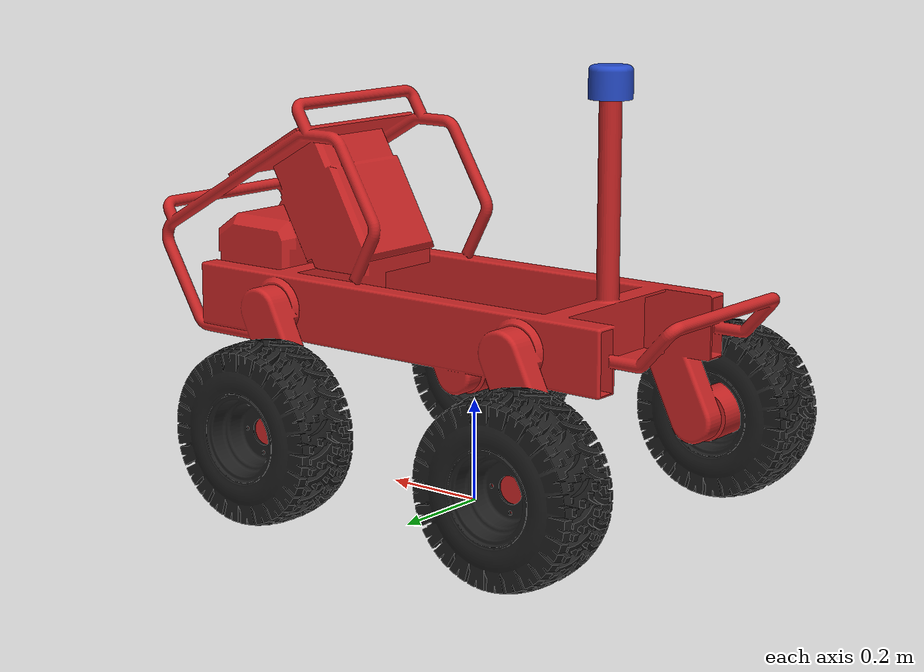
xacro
<?xml version="1.0" ?>
<robot name="robot" xmlns:xacro="http://www.ros.org/wiki/xacro">

<xacro:include filename="$(find robot_description)/urdf/materials.xacro" />
<xacro:include filename="$(find robot_description)/urdf/robot.gazebo" />

<link name="robot_footprint"></link>

  <joint name="robot_footprint_joint" type="fixed">
    <origin xyz="0 0 0" rpy="0 0 0" />
    <parent link="robot_footprint" />
    <child link="base_link" />
  </joint>

<link name="base_link">
  <inertial>
    <origin xyz="0.20220093737597014 0.004939439834032356 0.41355366312881875" rpy="0 0 0"/>
    <mass value="150.78888813493904"/>
    <inertia ixx="10.277979" iyy="24.4356" izz="25.482363" ixy="0.003732" iyz="0.001902" ixz="-3.810092"/>
  </inertial>
  <visual>
    <origin xyz="0 0 0" rpy="0 0 0"/>
    <geometry>
      <mesh filename="package://robot_description/meshes/base_link.stl" scale="0.001 0.001 0.001"/>
    </geometry>
    <material name="red"/>
  </visual>
  <collision>
    <origin xyz="0 0 0" rpy="0 0 0"/>
    <geometry>
      <mesh filename="package://robot_description/meshes/base_link.stl" scale="0.001 0.001 0.001"/>
    </geometry>
  </collision>
</link>

<link name="wheel_back_left_1">
  <inertial>
    <origin xyz="-1.7376132255275678e-08 0.002997907926125032 -2.4957341521192333e-07" rpy="0 0 0"/>
    <mass value="18.850995744913625"/>
    <inertia ixx="0.224929" iyy="0.359773" izz="0.224929" ixy="0.0" iyz="0.0" ixz="-0.0"/>
  </inertial>
  <visual>
    <origin xyz="0.353612 -0.345039 -0.173506" rpy="0 0 0"/>
    <geometry>
      <mesh filename="package://robot_description/meshes/wheel_back_left_1.stl" scale="0.001 0.001 0.001"/>
    </geometry>
    <material name="black"/>
  </visual>
  <collision>
    <origin xyz="0.353612 -0.345039 -0.173506" rpy="0 0 0"/>
    <geometry>
      <mesh filename="package://robot_description/meshes/wheel_back_left_1.stl" scale="0.001 0.001 0.001"/>
    </geometry>
  </collision>
</link>

<link name="wheel_back_right_1">
  <inertial>
    <origin xyz="-1.737613281038719e-08 -0.0025020920738726415 -2.4957341812625877e-07" rpy="0 0 0"/>
    <mass value="18.85099574491358"/>
    <inertia ixx="0.224929" iyy="0.359773" izz="0.224929" ixy="0.0" iyz="0.0" ixz="-0.0"/>
  </inertial>
  <visual>
    <origin xyz="0.353612 0.334961 -0.173506" rpy="0 0 0"/>
    <geometry>
      <mesh filename="package://robot_description/meshes/wheel_back_right_1.stl" scale="0.001 0.001 0.001"/>
    </geometry>
    <material name="black"/>
  </visual>
  <collision>
    <origin xyz="0.353612 0.334961 -0.173506" rpy="0 0 0"/>
    <geometry>
      <mesh filename="package://robot_description/meshes/wheel_back_right_1.stl" scale="0.001 0.001 0.001"/>
    </geometry>
  </collision>
</link>

<link name="wheel_front_right_1">
  <inertial>
    <origin xyz="4.0520683730616014e-07 -0.0025020920738715313 -2.495734135188332e-07" rpy="0 0 0"/>
    <mass value="18.850995744914012"/>
    <inertia ixx="0.224929" iyy="0.359773" izz="0.224929" ixy="0.0" iyz="0.0" ixz="-0.0"/>
  </inertial>
  <visual>
    <origin xyz="-0.223665 0.334961 -0.173506" rpy="0 0 0"/>
    <geometry>
      <mesh filename="package://robot_description/meshes/wheel_front_right_1.stl" scale="0.001 0.001 0.001"/>
    </geometry>
    <material name="black"/>
  </visual>
  <collision>
    <origin xyz="-0.223665 0.334961 -0.173506" rpy="0 0 0"/>
    <geometry>
      <mesh filename="package://robot_description/meshes/wheel_front_right_1.stl" scale="0.001 0.001 0.001"/>
    </geometry>
  </collision>
</link>

<link name="wheel_front_left_1">
  <inertial>
    <origin xyz="4.0520683466938046e-07 0.0029979079261240327 -2.495734160723462e-07" rpy="0 0 0"/>
    <mass value="18.850995744914055"/>
    <inertia ixx="0.224929" iyy="0.359773" izz="0.224929" ixy="0.0" iyz="0.0" ixz="-0.0"/>
  </inertial>
  <visual>
    <origin xyz="-0.223665 -0.345039 -0.173506" rpy="0 0 0"/>
    <geometry>
      <mesh filename="package://robot_description/meshes/wheel_front_left_1.stl" scale="0.001 0.001 0.001"/>
    </geometry>
    <material name="black"/>
  </visual>
  <collision>
    <origin xyz="-0.223665 -0.345039 -0.173506" rpy="0 0 0"/>
    <geometry>
      <mesh filename="package://robot_description/meshes/wheel_front_left_1.stl" scale="0.001 0.001 0.001"/>
    </geometry>
  </collision>
</link>

<link name="lidar_1">
  <inertial>
    <origin xyz="-2.5348043358741634e-07 3.095004238833077e-07 0.02952388194216904" rpy="0 0 0"/>
    <mass value="100.3275293008071234"/>
    <inertia ixx="0.001597" iyy="0.001597" izz="0.001837" ixy="-0.0" iyz="0.0" ixz="-0.0"/>
  </inertial>
  <visual>
    <origin xyz="0.308284 -0.005039 -0.800004" rpy="0 0 0"/>
    <geometry>
      <mesh filename="package://robot_description/meshes/lidar_1.stl" scale="0.001 0.001 0.001"/>
    </geometry>
    <material name="blue"/>
  </visual>
  <collision>
    <origin xyz="0.308284 -0.005039 -0.800004" rpy="0 0 0"/>
    <geometry>
      <mesh filename="package://robot_description/meshes/lidar_1.stl" scale="0.001 0.001 0.001"/>
    </geometry>
  </collision>
</link>

<joint name="joint_back_left" type="continuous">
  <origin xyz="-0.353612 0.345039 0.173506" rpy="0 0 0"/>
  <parent link="base_link"/>
  <child link="wheel_back_left_1"/>
  <axis xyz="0.0 1.0 0.0"/>
  <limit effort="10000" velocity="1000"/>
  <joint_properties damping="1.0" friction="1.0"/>
</joint>

<joint name="joint_back_right" type="continuous">
  <origin xyz="-0.353612 -0.334961 0.173506" rpy="0 0 0"/>
  <parent link="base_link"/>
  <child link="wheel_back_right_1"/>
  <axis xyz="0.0 1.0 0.0"/>
  <limit effort="10000" velocity="1000"/>
  <joint_properties damping="1.0" friction="1.0"/>
</joint>

<joint name="joint_front_right" type="continuous">
  <origin xyz="0.223665 -0.334961 0.173506" rpy="0 0 0"/>
  <parent link="base_link"/>
  <child link="wheel_front_right_1"/>
  <axis xyz="0.0 1.0 0.0"/>
  <limit effort="10000" velocity="1000"/>
  <joint_properties damping="1.0" friction="1.0"/>
</joint>

<joint name="joint_front_left" type="continuous">
  <origin xyz="0.223665 0.345039 0.173506" rpy="0 0 0"/>
  <parent link="base_link"/>
  <child link="wheel_front_left_1"/>
  <axis xyz="0.0 1.0 0.0"/>
  <limit effort="10000" velocity="1000"/>
  <joint_properties damping="1.0" friction="1.0"/>
</joint>

<joint name="joint_lidar" type="fixed">
  <origin xyz="-0.308284 0.005039 0.800004" rpy="0 0 0"/>
  <parent link="base_link"/>
  <child link="lidar_1"/>
</joint>

</robot>

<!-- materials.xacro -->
<robot name="robot" xmlns:xacro="http://www.ros.org/wiki/xacro" >

<material name="silver_default">
  <color rgba="0.700 0.700 0.700 1.000"/>
</material>
<material name="opaque515151">
  <color rgba="0.2 0.2 0.2 1.0"/>
</material>
<material name="opaque202209238">
  <color rgba="0.792156862745098 0.8196078431372549 0.9333333333333333 1.0"/>
</material>
<material name="abs_white">
  <color rgba="0.9647058823529412 0.9647058823529412 0.9529411764705882 1.0"/>
</material>

</robot>

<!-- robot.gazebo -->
<robot name="robot" xmlns:xacro="http://www.ros.org/wiki/xacro" >

<xacro:property name="body_color" value="Gazebo/Red" />
<xacro:property name="wheels" value="Gazebo/Black" />
<xacro:property name="lidar" value="Gazebo/Blue" />

<gazebo reference="base_link">
  <material>${body_color}</material>
  <mu1>0.2</mu1>
  <mu2>0.2</mu2>
  <selfCollide>true</selfCollide>
  <gravity>true</gravity>
</gazebo>

<gazebo reference="wheel_back_left_1">
  <material>${wheels}</material>
  <mu1>0.2</mu1>
  <mu2>0.2</mu2>
  <selfCollide>true</selfCollide>
  <kp>1000000.0</kp>
  <kd>100.0</kd>
  <maxVel>1.0</maxVel>
  <minDepth>0.01</minDepth>
</gazebo>

<gazebo reference="wheel_back_right_1">
  <material>${wheels}</material>
  <mu1>0.2</mu1>
  <mu2>0.2</mu2>
  <selfCollide>true</selfCollide>
  <kp>1000000.0</kp>
  <kd>100.0</kd>
  <maxVel>1.0</maxVel>
  <minDepth>0.01</minDepth>
</gazebo>

<gazebo reference="wheel_front_right_1">
  <material>${wheels}</material>
  <mu1>0.2</mu1>
  <mu2>0.2</mu2>
  <selfCollide>true</selfCollide>
  <kp>1000000.0</kp>
  <kd>100.0</kd>
  <maxVel>1.0</maxVel>
  <minDepth>0.01</minDepth>
</gazebo>

<gazebo reference="wheel_front_left_1">
  <material>${wheels}</material>
  <mu1>0.2</mu1>
  <mu2>0.2</mu2>
  <selfCollide>true</selfCollide>
  <kp>1000000.0</kp>
  <kd>100.0</kd>
  <maxVel>1.0</maxVel>
  <minDepth>0.01</minDepth>
</gazebo>
<gazebo>
  <plugin name="gps_controller" filename="libhector_gazebo_ros_gps.so">
      <alwayson>true</alwayson>
      <updaterate>1.0</updaterate>
      <bodyname>base_link</bodyname>
      <topicname>/fix</topicname>
      <velocitytopicname>/fix_velocity</velocitytopicname>
      <drift>5.0 5.0 5.0</drift>
      <gaussiannoise>0.1 0.1 0.1</gaussiannoise>
      <velocitydrift>0 0 0</velocitydrift>
      <velocitygaussiannoise>0.1 0.1 0.1</velocitygaussiannoise>
  </plugin>
</gazebo>
<gazebo>
    <plugin name="skid_steer_drive_controller" filename="libgazebo_ros_skid_steer_drive.so">
          <updateRate>40.0</updateRate>
          <robotNamespace>/</robotNamespace>
          <leftFrontJoint>joint_front_left</leftFrontJoint>
          <rightFrontJoint>joint_front_right</rightFrontJoint>
          <leftRearJoint>joint_back_left</leftRearJoint>
          <rightRearJoint>joint_back_right</rightRearJoint>
          <wheelSeparation>0.685</wheelSeparation>
          <wheelDiameter>0.180</wheelDiameter>
          <robotBaseFrame>robot_footprint</robotBaseFrame>
          <torque>250</torque>
          <MaxForce>50.0</MaxForce>
          <frameId>base_link</frameId>
          <topicName>/cmd_vel</topicName>
          <broadcastTF>true</broadcastTF>
          <commandTopic>/cmd_vel</commandTopic>
          <odometryTopic>/odom</odometryTopic>
          <odometryFrame>/odom</odometryFrame>
          <covariance_x>0.001</covariance_x>
          <covariance_y>0.001</covariance_y>
          <covariance_yaw>0.01</covariance_yaw>
    </plugin>
</gazebo>

<gazebo>
    <plugin name="gazebo_ros_control" filename="libgazebo_ros_control.so">
        <robotNamespace>/</robotNamespace>
    </plugin>
</gazebo>

<!-- hokuyo -->
  <gazebo reference="lidar_1">
    <material>${lidar}</material>
    <sensor type="ray" name="head_hokuyo_sensor">
      <pose>0 0 0 0 0 0</pose>
      <visualize>false</visualize>
      <update_rate>40</update_rate>
      <ray>
        <scan>
          <horizontal>
            <samples>1440</samples>
            <resolution>1</resolution>
            <min_angle>-3.14</min_angle>
            <max_angle>3.14</max_angle>
          </horizontal>
        </scan>
        <range>
          <min>0.10</min>
          <max>30.0</max>
          <resolution>0.01</resolution>
        </range>
        <noise>
          <type>gaussian</type>
          <mean>0.0</mean>
          <stddev>0.01</stddev>
        </noise>
      </ray>
      <plugin name="gazebo_ros_head_hokuyo_controller" filename="libgazebo_ros_laser.so">
        <topicName>/laser/scan</topicName>
        <frameName>lidar_1</frameName>
      </plugin>
    </sensor>
  </gazebo>

</robot>
